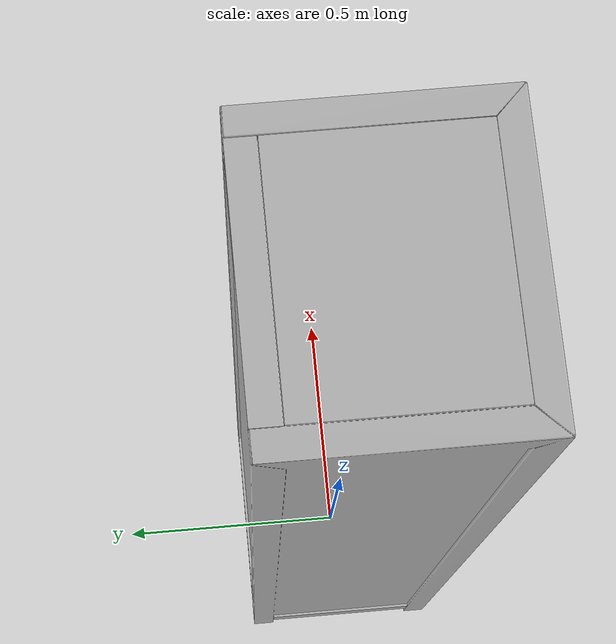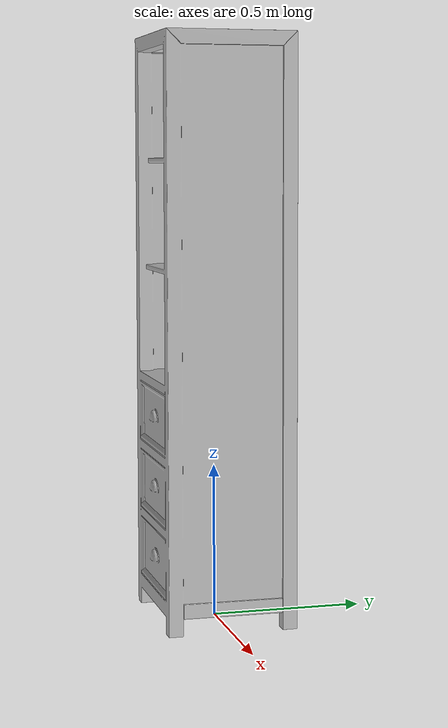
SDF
<sdf version="1.6">
	<model name="Bookcases_O2e667bbe14a2_lod0">
		<link name="main_link">
			<visual name="visual_RootNode">
				<geometry>
					<mesh>
						<uri>model://Bookcases_O2e667bbe14a2_lod0/meshes/visual_RootNode.dae</uri>
					</mesh>
				</geometry>
			</visual>
			<collision name="collision_RootNode_lod0_0">
				<geometry>
					<mesh>
						<uri>model://Bookcases_O2e667bbe14a2_lod0/meshes/collision_RootNode_lod0_0.dae</uri>
					</mesh>
				</geometry>
			</collision>
		</link>
	</model>
</sdf>
